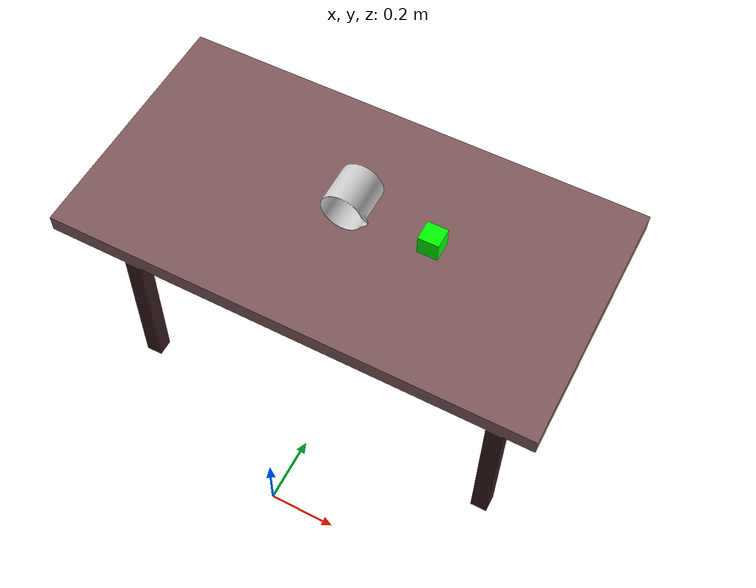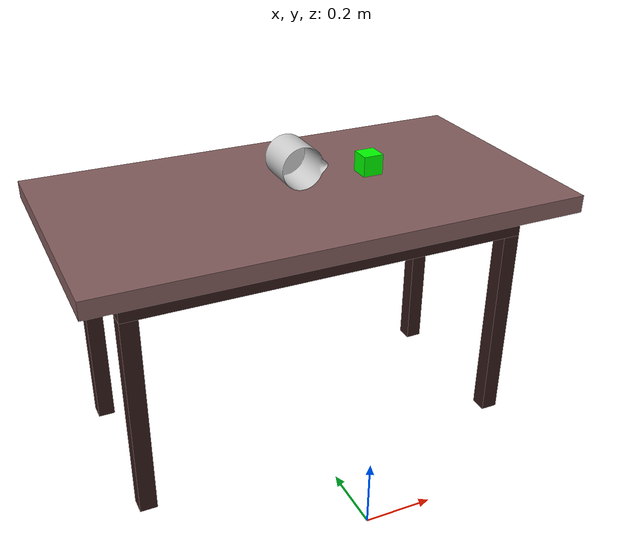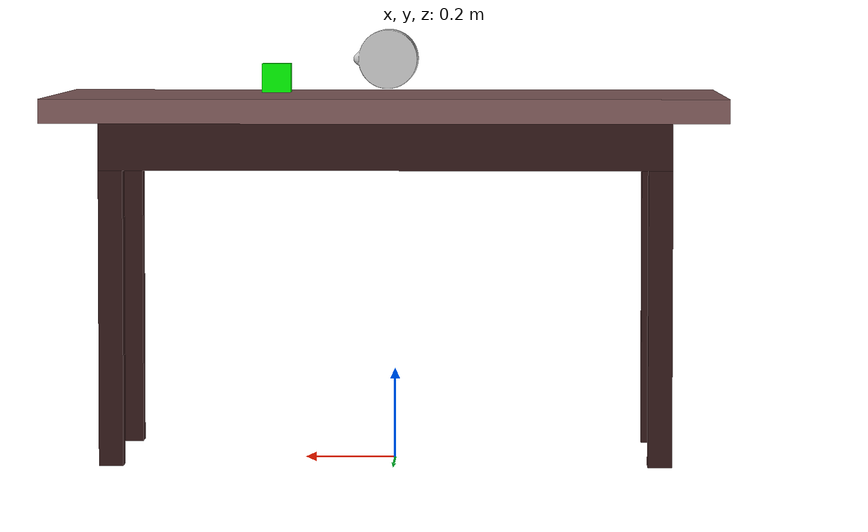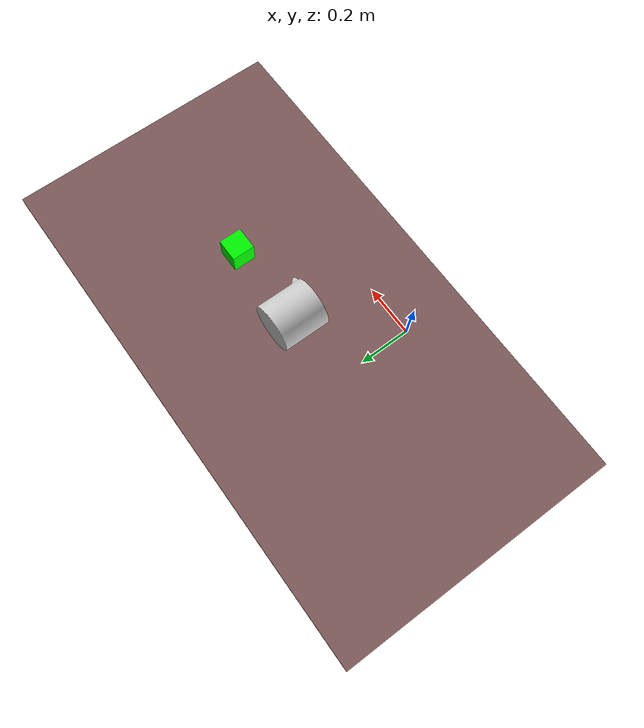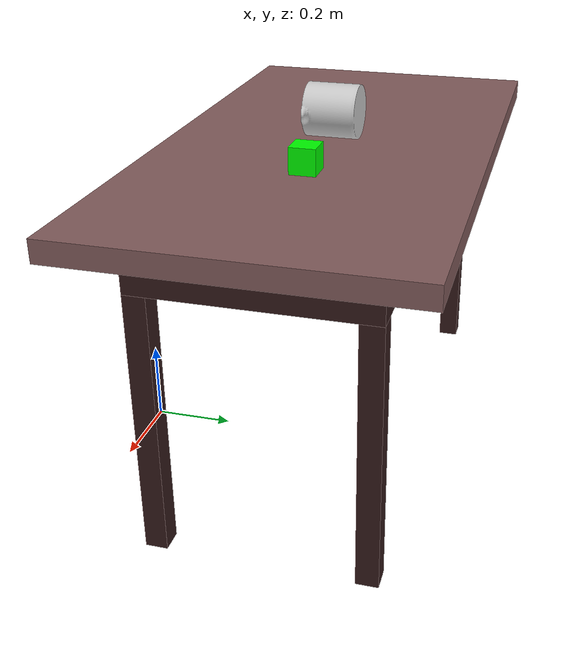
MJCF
<mujoco>
  <compiler autolimits="true" angle="radian"/>

  <option timestep="0.002" cone="elliptic">
    <flag multiccd="enable"/>
  </option>

  <statistic meansize=".05"/>

  <visual>
    <rgba haze="0.15 0.25 0.35 1"/>
    <global offwidth="1920" offheight="1080" azimuth="120" elevation="-20"/>
  </visual>

  <asset>
    <material name="gray" rgba=".8 .8 .8 1"/>
    <material name="brown" rgba=".509 .36 .36 1"/>
    <texture type="skybox" builtin="gradient" rgb1="0.3 0.5 0.7" rgb2="0 0 0" width="512" height="3072"/>

    <mesh file="beaker.obj"/>
    <mesh file="beaker_collision_0.obj"/>
    <mesh file="beaker_collision_1.obj"/>
    <mesh file="beaker_collision_2.obj"/>
    <mesh file="beaker_collision_3.obj"/>
    <mesh file="beaker_collision_4.obj"/>
    <mesh file="beaker_collision_5.obj"/>
    <mesh file="beaker_collision_6.obj"/>
    <mesh file="beaker_collision_7.obj"/>
    <mesh file="beaker_collision_8.obj"/>
    <mesh file="beaker_collision_9.obj"/>
    <mesh file="beaker_collision_10.obj"/>
    <mesh file="beaker_collision_11.obj"/>
    <mesh file="beaker_collision_12.obj"/>
    <mesh file="beaker_collision_13.obj"/>
    <mesh file="beaker_collision_14.obj"/>
  </asset>

  <default>
    <geom solref=".004 1"/>
    <default class="visual">
      <geom group="2" type="mesh" contype="0" conaffinity="0"/>
    </default>
    <default class="collision">
      <geom group="3" type="mesh" condim="6"/>
      <default class="table_collision">
        <geom type="box"/>
      </default>
    </default>
  </default>

  <worldbody>
    <light pos="0 0 2"/>
    <body name="table" pos="0 0.49 0.065">
      <geom class="visual" type="box" size=".7 .375 .025" pos="0 0 0.735" material="brown"/>
      <geom class="visual" rgba=".2 .1 .1 1" type="box" size="0.59 0.26 .05" pos="0 0 0.66" material="brown"/>
      <geom class="visual" rgba=".2 .1 .1 1" type="box" size="0.025 0.025 0.305" pos="-0.565 0.235 0.305"
        material="brown"/>
      <geom class="visual" rgba=".2 .1 .1 1" type="box" size="0.025 0.025 0.305" pos="-0.565 -0.235 0.305"
        material="brown"/>
      <geom class="visual" rgba=".2 .1 .1 1" type="box" size="0.025 0.025 0.305" pos="0.565 0.235 0.305"
        material="brown"/>
      <geom class="visual" rgba=".2 .1 .1 1" type="box" size="0.025 0.025 0.305" pos="0.565 -0.235 0.305"
        material="brown"/>
      <geom size=".6 .375 .025" pos="0 0 0.735" mass="40" class="table_collision"/>
      <geom size="0.59 0.26 .05" pos="0 0 0.66" class="table_collision"/>
      <geom size="0.025 0.025 0.305" pos="-0.565 0.235 0.305" class="table_collision"/>
      <geom size="0.025 0.025 0.305" pos="-0.565 -0.235 0.305" class="table_collision"/>
      <geom size="0.025 0.025 0.305" pos="0.565 0.235 0.305" class="table_collision"/>
      <geom size="0.025 0.025 0.305" pos="0.565 -0.235 0.305" class="table_collision"/>
    </body>
    <body name="obj0" pos="0.235 0.5 0.86">
      <freejoint/>
      <geom type="box" size="0.03 0.03 0.03" rgba="0 1 0 1" mass="0.088"/>
    </body>
    <body name="beaker" pos="0 0.5 .9" euler="1.57 0 0">
      <freejoint/>
      <geom material="gray" mesh="beaker" class="visual"/>
      <geom mesh="beaker_collision_0" class="collision"/>
      <geom mesh="beaker_collision_1" class="collision"/>
      <geom mesh="beaker_collision_2" class="collision"/>
      <geom mesh="beaker_collision_3" class="collision"/>
      <geom mesh="beaker_collision_4" class="collision"/>
      <geom mesh="beaker_collision_5" class="collision"/>
      <geom mesh="beaker_collision_6" class="collision"/>
      <geom mesh="beaker_collision_7" class="collision"/>
      <geom mesh="beaker_collision_8" class="collision"/>
      <geom mesh="beaker_collision_9" class="collision"/>
      <geom mesh="beaker_collision_10" class="collision"/>
      <geom mesh="beaker_collision_11" class="collision"/>
      <geom mesh="beaker_collision_12" class="collision"/>
      <geom mesh="beaker_collision_13" class="collision"/>
      <geom mesh="beaker_collision_14" class="collision"/>
    </body>
  </worldbody>
</mujoco>
